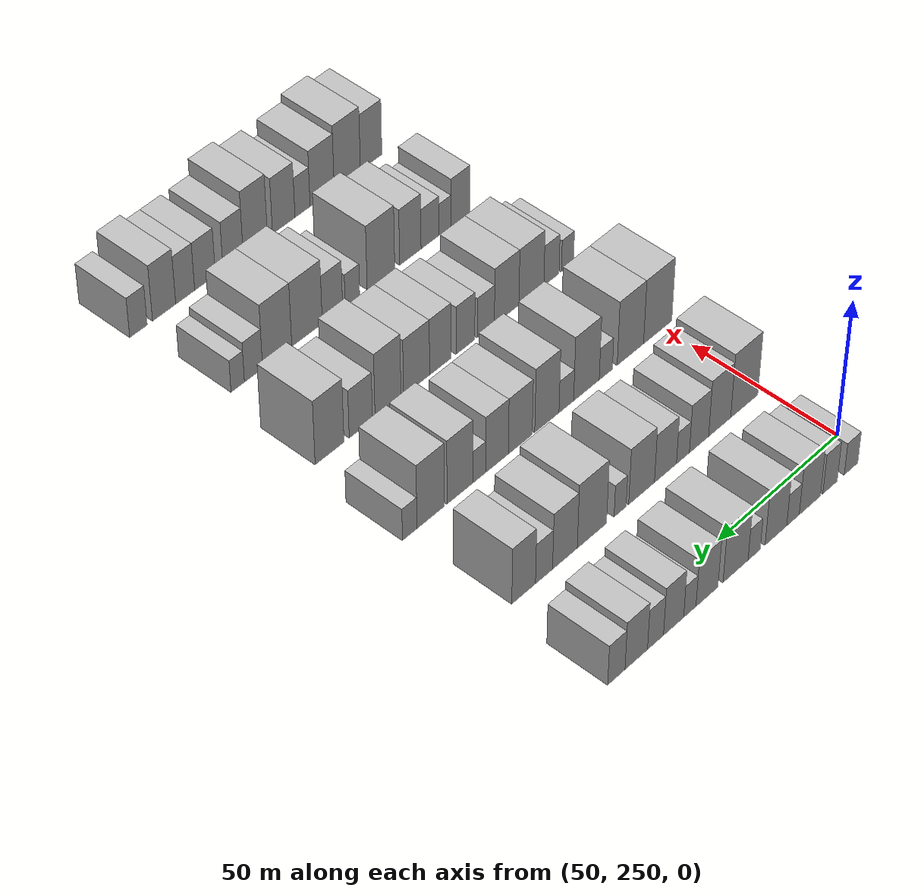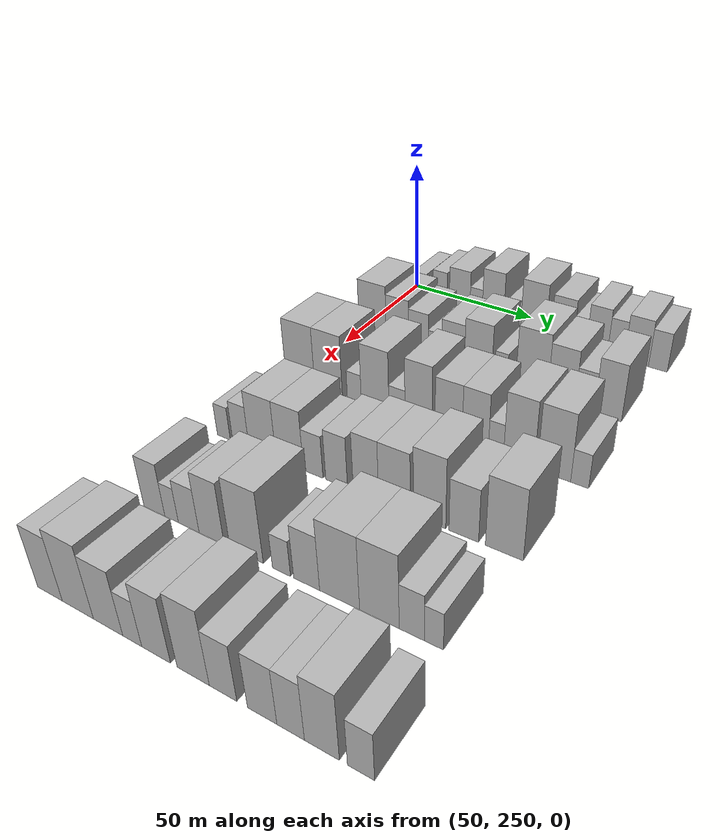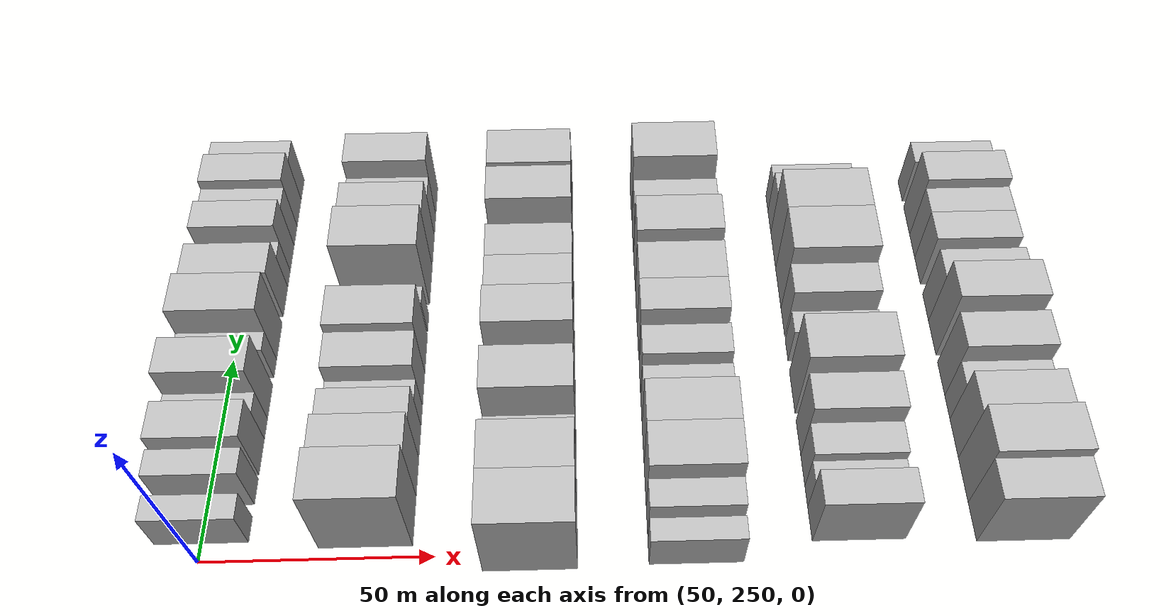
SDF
<sdf version="1.6">
 <world name="default">
  <model name="building_92">
   <static>1</static>
   <pose>50.0000 257.2683 0 0.000000 0.000000 0.000000</pose>
   <link name="link">
    <pose>0 0 6.00 0 0 0</pose>
    <collision name="collision"><geometry><box><size>20.0000 5.7715 12.0000</size></box></geometry></collision>
    <visual name="visual">
     <cast_shadows>0</cast_shadows>
     <geometry><box><size>20.0000 5.7715 12.0000</size></box></geometry>
     <material>
      <script>
       <uri>model://HANNAS_wall/materials/scripts</uri>
       <uri>model://HANNAS_wall/materials/textures</uri>
       <name>vrc/HANNAS_wall</name>
      </script>
     </material>
    </visual>
   </link>
  </model>
  <model name="building_93">
   <static>1</static>
   <pose>50.0000 266.2043 0 0.000000 0.000000 0.000000</pose>
   <link name="link">
    <pose>0 0 7.50 0 0 0</pose>
    <collision name="collision"><geometry><box><size>20.0000 6.1004 15.0000</size></box></geometry></collision>
    <visual name="visual">
     <cast_shadows>0</cast_shadows>
     <geometry><box><size>20.0000 6.1004 15.0000</size></box></geometry>
     <material>
      <script>
       <uri>model://HANNAS_wall/materials/scripts</uri>
       <uri>model://HANNAS_wall/materials/textures</uri>
       <name>vrc/HANNAS_wall</name>
      </script>
     </material>
    </visual>
   </link>
  </model>
  <model name="building_94">
   <static>1</static>
   <pose>50.0000 274.7041 0 0.000000 0.000000 0.000000</pose>
   <link name="link">
    <pose>0 0 9.00 0 0 0</pose>
    <collision name="collision"><geometry><box><size>20.0000 8.8991 18.0000</size></box></geometry></collision>
    <visual name="visual">
     <cast_shadows>0</cast_shadows>
     <geometry><box><size>20.0000 8.8991 18.0000</size></box></geometry>
     <material>
      <script>
       <uri>model://HANNAS_wall/materials/scripts</uri>
       <uri>model://HANNAS_wall/materials/textures</uri>
       <name>vrc/HANNAS_wall</name>
      </script>
     </material>
    </visual>
   </link>
  </model>
  <model name="building_95">
   <static>1</static>
   <pose>50.0000 281.7458 0 0.000000 0.000000 0.000000</pose>
   <link name="link">
    <pose>0 0 6.00 0 0 0</pose>
    <collision name="collision"><geometry><box><size>20.0000 5.1842 12.0000</size></box></geometry></collision>
    <visual name="visual">
     <cast_shadows>0</cast_shadows>
     <geometry><box><size>20.0000 5.1842 12.0000</size></box></geometry>
     <material>
      <script>
       <uri>model://HANNAS_wall/materials/scripts</uri>
       <uri>model://HANNAS_wall/materials/textures</uri>
       <name>vrc/HANNAS_wall</name>
      </script>
     </material>
    </visual>
   </link>
  </model>
  <model name="building_96">
   <static>1</static>
   <pose>50.0000 288.7859 0 0.000000 0.000000 0.000000</pose>
   <link name="link">
    <pose>0 0 10.50 0 0 0</pose>
    <collision name="collision"><geometry><box><size>20.0000 8.8962 21.0000</size></box></geometry></collision>
    <visual name="visual">
     <cast_shadows>0</cast_shadows>
     <geometry><box><size>20.0000 8.8962 21.0000</size></box></geometry>
     <material>
      <script>
       <uri>model://HANNAS_wall/materials/scripts</uri>
       <uri>model://HANNAS_wall/materials/textures</uri>
       <name>vrc/HANNAS_wall</name>
      </script>
     </material>
    </visual>
   </link>
  </model>
  <model name="building_97">
   <static>1</static>
   <pose>50.0000 297.7206 0 0.000000 0.000000 0.000000</pose>
   <link name="link">
    <pose>0 0 6.00 0 0 0</pose>
    <collision name="collision"><geometry><box><size>20.0000 4.9731 12.0000</size></box></geometry></collision>
    <visual name="visual">
     <cast_shadows>0</cast_shadows>
     <geometry><box><size>20.0000 4.9731 12.0000</size></box></geometry>
     <material>
      <script>
       <uri>model://HANNAS_wall/materials/scripts</uri>
       <uri>model://HANNAS_wall/materials/textures</uri>
       <name>vrc/HANNAS_wall</name>
      </script>
     </material>
    </visual>
   </link>
  </model>
  <model name="building_98">
   <static>1</static>
   <pose>50.0000 305.2577 0 0.000000 0.000000 0.000000</pose>
   <link name="link">
    <pose>0 0 10.50 0 0 0</pose>
    <collision name="collision"><geometry><box><size>20.0000 10.1011 21.0000</size></box></geometry></collision>
    <visual name="visual">
     <cast_shadows>0</cast_shadows>
     <geometry><box><size>20.0000 10.1011 21.0000</size></box></geometry>
     <material>
      <script>
       <uri>model://HANNAS_wall/materials/scripts</uri>
       <uri>model://HANNAS_wall/materials/textures</uri>
       <name>vrc/HANNAS_wall</name>
      </script>
     </material>
    </visual>
   </link>
  </model>
  <model name="building_99">
   <static>1</static>
   <pose>50.0000 316.6990 0 0.000000 0.000000 0.000000</pose>
   <link name="link">
    <pose>0 0 9.00 0 0 0</pose>
    <collision name="collision"><geometry><box><size>20.0000 8.7816 18.0000</size></box></geometry></collision>
    <visual name="visual">
     <cast_shadows>0</cast_shadows>
     <geometry><box><size>20.0000 8.7816 18.0000</size></box></geometry>
     <material>
      <script>
       <uri>model://HANNAS_wall/materials/scripts</uri>
       <uri>model://HANNAS_wall/materials/textures</uri>
       <name>vrc/HANNAS_wall</name>
      </script>
     </material>
    </visual>
   </link>
  </model>
  <model name="building_100">
   <static>1</static>
   <pose>50.0000 323.5228 0 0.000000 0.000000 0.000000</pose>
   <link name="link">
    <pose>0 0 6.00 0 0 0</pose>
    <collision name="collision"><geometry><box><size>20.0000 4.8660 12.0000</size></box></geometry></collision>
    <visual name="visual">
     <cast_shadows>0</cast_shadows>
     <geometry><box><size>20.0000 4.8660 12.0000</size></box></geometry>
     <material>
      <script>
       <uri>model://HANNAS_wall/materials/scripts</uri>
       <uri>model://HANNAS_wall/materials/textures</uri>
       <name>vrc/HANNAS_wall</name>
      </script>
     </material>
    </visual>
   </link>
  </model>
  <model name="building_101">
   <static>1</static>
   <pose>50.0000 329.9068 0 0.000000 0.000000 0.000000</pose>
   <link name="link">
    <pose>0 0 9.00 0 0 0</pose>
    <collision name="collision"><geometry><box><size>20.0000 7.9020 18.0000</size></box></geometry></collision>
    <visual name="visual">
     <cast_shadows>0</cast_shadows>
     <geometry><box><size>20.0000 7.9020 18.0000</size></box></geometry>
     <material>
      <script>
       <uri>model://HANNAS_wall/materials/scripts</uri>
       <uri>model://HANNAS_wall/materials/textures</uri>
       <name>vrc/HANNAS_wall</name>
      </script>
     </material>
    </visual>
   </link>
  </model>
  <model name="building_102">
   <static>1</static>
   <pose>50.0000 336.9738 0 0.000000 0.000000 0.000000</pose>
   <link name="link">
    <pose>0 0 7.50 0 0 0</pose>
    <collision name="collision"><geometry><box><size>20.0000 6.2320 15.0000</size></box></geometry></collision>
    <visual name="visual">
     <cast_shadows>0</cast_shadows>
     <geometry><box><size>20.0000 6.2320 15.0000</size></box></geometry>
     <material>
      <script>
       <uri>model://HANNAS_wall/materials/scripts</uri>
       <uri>model://HANNAS_wall/materials/textures</uri>
       <name>vrc/HANNAS_wall</name>
      </script>
     </material>
    </visual>
   </link>
  </model>
  <model name="building_103">
   <static>1</static>
   <pose>50.0000 344.4204 0 0.000000 0.000000 0.000000</pose>
   <link name="link">
    <pose>0 0 9.00 0 0 0</pose>
    <collision name="collision"><geometry><box><size>20.0000 8.6612 18.0000</size></box></geometry></collision>
    <visual name="visual">
     <cast_shadows>0</cast_shadows>
     <geometry><box><size>20.0000 8.6612 18.0000</size></box></geometry>
     <material>
      <script>
       <uri>model://HANNAS_wall/materials/scripts</uri>
       <uri>model://HANNAS_wall/materials/textures</uri>
       <name>vrc/HANNAS_wall</name>
      </script>
     </material>
    </visual>
   </link>
  </model>
  <model name="building_104">
   <static>1</static>
   <pose>50.0000 352.0618 0 0.000000 0.000000 0.000000</pose>
   <link name="link">
    <pose>0 0 7.50 0 0 0</pose>
    <collision name="collision"><geometry><box><size>20.0000 6.6216 15.0000</size></box></geometry></collision>
    <visual name="visual">
     <cast_shadows>0</cast_shadows>
     <geometry><box><size>20.0000 6.6216 15.0000</size></box></geometry>
     <material>
      <script>
       <uri>model://HANNAS_wall/materials/scripts</uri>
       <uri>model://HANNAS_wall/materials/textures</uri>
       <name>vrc/HANNAS_wall</name>
      </script>
     </material>
    </visual>
   </link>
  </model>
  <model name="building_219">
   <static>1</static>
   <pose>85.0000 258.3896 0 0.000000 0.000000 0.000000</pose>
   <link name="link">
    <pose>0 0 12.00 0 0 0</pose>
    <collision name="collision"><geometry><box><size>20.0000 11.4943 24.0000</size></box></geometry></collision>
    <visual name="visual">
     <cast_shadows>0</cast_shadows>
     <geometry><box><size>20.0000 11.4943 24.0000</size></box></geometry>
     <material>
      <script>
       <uri>model://HANNAS_wall/materials/scripts</uri>
       <uri>model://HANNAS_wall/materials/textures</uri>
       <name>vrc/HANNAS_wall</name>
      </script>
     </material>
    </visual>
   </link>
  </model>
  <model name="building_220">
   <static>1</static>
   <pose>85.0000 268.7590 0 0.000000 0.000000 0.000000</pose>
   <link name="link">
    <pose>0 0 10.50 0 0 0</pose>
    <collision name="collision"><geometry><box><size>20.0000 9.2443 21.0000</size></box></geometry></collision>
    <visual name="visual">
     <cast_shadows>0</cast_shadows>
     <geometry><box><size>20.0000 9.2443 21.0000</size></box></geometry>
     <material>
      <script>
       <uri>model://HANNAS_wall/materials/scripts</uri>
       <uri>model://HANNAS_wall/materials/textures</uri>
       <name>vrc/HANNAS_wall</name>
      </script>
     </material>
    </visual>
   </link>
  </model>
  <model name="building_221">
   <static>1</static>
   <pose>85.0000 277.3697 0 0.000000 0.000000 0.000000</pose>
   <link name="link">
    <pose>0 0 9.00 0 0 0</pose>
    <collision name="collision"><geometry><box><size>20.0000 7.9772 18.0000</size></box></geometry></collision>
    <visual name="visual">
     <cast_shadows>0</cast_shadows>
     <geometry><box><size>20.0000 7.9772 18.0000</size></box></geometry>
     <material>
      <script>
       <uri>model://HANNAS_wall/materials/scripts</uri>
       <uri>model://HANNAS_wall/materials/textures</uri>
       <name>vrc/HANNAS_wall</name>
      </script>
     </material>
    </visual>
   </link>
  </model>
  <model name="building_222">
   <static>1</static>
   <pose>85.0000 284.0123 0 0.000000 0.000000 0.000000</pose>
   <link name="link">
    <pose>0 0 6.00 0 0 0</pose>
    <collision name="collision"><geometry><box><size>20.0000 5.3081 12.0000</size></box></geometry></collision>
    <visual name="visual">
     <cast_shadows>0</cast_shadows>
     <geometry><box><size>20.0000 5.3081 12.0000</size></box></geometry>
     <material>
      <script>
       <uri>model://HANNAS_wall/materials/scripts</uri>
       <uri>model://HANNAS_wall/materials/textures</uri>
       <name>vrc/HANNAS_wall</name>
      </script>
     </material>
    </visual>
   </link>
  </model>
  <model name="building_223">
   <static>1</static>
   <pose>85.0000 291.1595 0 0.000000 0.000000 0.000000</pose>
   <link name="link">
    <pose>0 0 9.00 0 0 0</pose>
    <collision name="collision"><geometry><box><size>20.0000 8.9863 18.0000</size></box></geometry></collision>
    <visual name="visual">
     <cast_shadows>0</cast_shadows>
     <geometry><box><size>20.0000 8.9863 18.0000</size></box></geometry>
     <material>
      <script>
       <uri>model://HANNAS_wall/materials/scripts</uri>
       <uri>model://HANNAS_wall/materials/textures</uri>
       <name>vrc/HANNAS_wall</name>
      </script>
     </material>
    </visual>
   </link>
  </model>
  <model name="building_224">
   <static>1</static>
   <pose>85.0000 300.8578 0 0.000000 0.000000 0.000000</pose>
   <link name="link">
    <pose>0 0 10.50 0 0 0</pose>
    <collision name="collision"><geometry><box><size>20.0000 10.4103 21.0000</size></box></geometry></collision>
    <visual name="visual">
     <cast_shadows>0</cast_shadows>
     <geometry><box><size>20.0000 10.4103 21.0000</size></box></geometry>
     <material>
      <script>
       <uri>model://HANNAS_wall/materials/scripts</uri>
       <uri>model://HANNAS_wall/materials/textures</uri>
       <name>vrc/HANNAS_wall</name>
      </script>
     </material>
    </visual>
   </link>
  </model>
  <model name="building_225">
   <static>1</static>
   <pose>85.0000 309.4707 0 0.000000 0.000000 0.000000</pose>
   <link name="link">
    <pose>0 0 6.00 0 0 0</pose>
    <collision name="collision"><geometry><box><size>20.0000 4.8156 12.0000</size></box></geometry></collision>
    <visual name="visual">
     <cast_shadows>0</cast_shadows>
     <geometry><box><size>20.0000 4.8156 12.0000</size></box></geometry>
     <material>
      <script>
       <uri>model://HANNAS_wall/materials/scripts</uri>
       <uri>model://HANNAS_wall/materials/textures</uri>
       <name>vrc/HANNAS_wall</name>
      </script>
     </material>
    </visual>
   </link>
  </model>
  <model name="building_226">
   <static>1</static>
   <pose>85.0000 320.6499 0 0.000000 0.000000 0.000000</pose>
   <link name="link">
    <pose>0 0 12.00 0 0 0</pose>
    <collision name="collision"><geometry><box><size>20.0000 11.5427 24.0000</size></box></geometry></collision>
    <visual name="visual">
     <cast_shadows>0</cast_shadows>
     <geometry><box><size>20.0000 11.5427 24.0000</size></box></geometry>
     <material>
      <script>
       <uri>model://HANNAS_wall/materials/scripts</uri>
       <uri>model://HANNAS_wall/materials/textures</uri>
       <name>vrc/HANNAS_wall</name>
      </script>
     </material>
    </visual>
   </link>
  </model>
  <model name="building_227">
   <static>1</static>
   <pose>85.0000 331.2374 0 0.000000 0.000000 0.000000</pose>
   <link name="link">
    <pose>0 0 10.50 0 0 0</pose>
    <collision name="collision"><geometry><box><size>20.0000 9.6322 21.0000</size></box></geometry></collision>
    <visual name="visual">
     <cast_shadows>0</cast_shadows>
     <geometry><box><size>20.0000 9.6322 21.0000</size></box></geometry>
     <material>
      <script>
       <uri>model://HANNAS_wall/materials/scripts</uri>
       <uri>model://HANNAS_wall/materials/textures</uri>
       <name>vrc/HANNAS_wall</name>
      </script>
     </material>
    </visual>
   </link>
  </model>
  <model name="building_228">
   <static>1</static>
   <pose>85.0000 339.3520 0 0.000000 0.000000 0.000000</pose>
   <link name="link">
    <pose>0 0 7.50 0 0 0</pose>
    <collision name="collision"><geometry><box><size>20.0000 6.5972 15.0000</size></box></geometry></collision>
    <visual name="visual">
     <cast_shadows>0</cast_shadows>
     <geometry><box><size>20.0000 6.5972 15.0000</size></box></geometry>
     <material>
      <script>
       <uri>model://HANNAS_wall/materials/scripts</uri>
       <uri>model://HANNAS_wall/materials/textures</uri>
       <name>vrc/HANNAS_wall</name>
      </script>
     </material>
    </visual>
   </link>
  </model>
  <model name="building_229">
   <static>1</static>
   <pose>85.0000 347.1749 0 0.000000 0.000000 0.000000</pose>
   <link name="link">
    <pose>0 0 10.50 0 0 0</pose>
    <collision name="collision"><geometry><box><size>20.0000 9.0485 21.0000</size></box></geometry></collision>
    <visual name="visual">
     <cast_shadows>0</cast_shadows>
     <geometry><box><size>20.0000 9.0485 21.0000</size></box></geometry>
     <material>
      <script>
       <uri>model://HANNAS_wall/materials/scripts</uri>
       <uri>model://HANNAS_wall/materials/textures</uri>
       <name>vrc/HANNAS_wall</name>
      </script>
     </material>
    </visual>
   </link>
  </model>
  <model name="building_352">
   <static>1</static>
   <pose>120.0000 252.5207 0 0.000000 0.000000 0.000000</pose>
   <link name="link">
    <pose>0 0 12.00 0 0 0</pose>
    <collision name="collision"><geometry><box><size>20.0000 11.9586 24.0000</size></box></geometry></collision>
    <visual name="visual">
     <cast_shadows>0</cast_shadows>
     <geometry><box><size>20.0000 11.9586 24.0000</size></box></geometry>
     <material>
      <script>
       <uri>model://HANNAS_wall/materials/scripts</uri>
       <uri>model://HANNAS_wall/materials/textures</uri>
       <name>vrc/HANNAS_wall</name>
      </script>
     </material>
    </visual>
   </link>
  </model>
  <model name="building_353">
   <static>1</static>
   <pose>120.0000 264.0244 0 0.000000 0.000000 0.000000</pose>
   <link name="link">
    <pose>0 0 12.00 0 0 0</pose>
    <collision name="collision"><geometry><box><size>20.0000 11.0487 24.0000</size></box></geometry></collision>
    <visual name="visual">
     <cast_shadows>0</cast_shadows>
     <geometry><box><size>20.0000 11.0487 24.0000</size></box></geometry>
     <material>
      <script>
       <uri>model://HANNAS_wall/materials/scripts</uri>
       <uri>model://HANNAS_wall/materials/textures</uri>
       <name>vrc/HANNAS_wall</name>
      </script>
     </material>
    </visual>
   </link>
  </model>
  <model name="building_354">
   <static>1</static>
   <pose>120.0000 274.2743 0 0.000000 0.000000 0.000000</pose>
   <link name="link">
    <pose>0 0 6.00 0 0 0</pose>
    <collision name="collision"><geometry><box><size>20.0000 5.4513 12.0000</size></box></geometry></collision>
    <visual name="visual">
     <cast_shadows>0</cast_shadows>
     <geometry><box><size>20.0000 5.4513 12.0000</size></box></geometry>
     <material>
      <script>
       <uri>model://HANNAS_wall/materials/scripts</uri>
       <uri>model://HANNAS_wall/materials/textures</uri>
       <name>vrc/HANNAS_wall</name>
      </script>
     </material>
    </visual>
   </link>
  </model>
  <model name="building_355">
   <static>1</static>
   <pose>120.0000 282.2434 0 0.000000 0.000000 0.000000</pose>
   <link name="link">
    <pose>0 0 12.00 0 0 0</pose>
    <collision name="collision"><geometry><box><size>20.0000 10.4867 24.0000</size></box></geometry></collision>
    <visual name="visual">
     <cast_shadows>0</cast_shadows>
     <geometry><box><size>20.0000 10.4867 24.0000</size></box></geometry>
     <material>
      <script>
       <uri>model://HANNAS_wall/materials/scripts</uri>
       <uri>model://HANNAS_wall/materials/textures</uri>
       <name>vrc/HANNAS_wall</name>
      </script>
     </material>
    </visual>
   </link>
  </model>
  <model name="building_356">
   <static>1</static>
   <pose>120.0000 290.4599 0 0.000000 0.000000 0.000000</pose>
   <link name="link">
    <pose>0 0 6.00 0 0 0</pose>
    <collision name="collision"><geometry><box><size>20.0000 5.9464 12.0000</size></box></geometry></collision>
    <visual name="visual">
     <cast_shadows>0</cast_shadows>
     <geometry><box><size>20.0000 5.9464 12.0000</size></box></geometry>
     <material>
      <script>
       <uri>model://HANNAS_wall/materials/scripts</uri>
       <uri>model://HANNAS_wall/materials/textures</uri>
       <name>vrc/HANNAS_wall</name>
      </script>
     </material>
    </visual>
   </link>
  </model>
  <model name="building_357">
   <static>1</static>
   <pose>120.0000 298.3262 0 0.000000 0.000000 0.000000</pose>
   <link name="link">
    <pose>0 0 12.00 0 0 0</pose>
    <collision name="collision"><geometry><box><size>20.0000 9.7862 24.0000</size></box></geometry></collision>
    <visual name="visual">
     <cast_shadows>0</cast_shadows>
     <geometry><box><size>20.0000 9.7862 24.0000</size></box></geometry>
     <material>
      <script>
       <uri>model://HANNAS_wall/materials/scripts</uri>
       <uri>model://HANNAS_wall/materials/textures</uri>
       <name>vrc/HANNAS_wall</name>
      </script>
     </material>
    </visual>
   </link>
  </model>
  <model name="building_358">
   <static>1</static>
   <pose>120.0000 308.9701 0 0.000000 0.000000 0.000000</pose>
   <link name="link">
    <pose>0 0 10.50 0 0 0</pose>
    <collision name="collision"><geometry><box><size>20.0000 9.5015 21.0000</size></box></geometry></collision>
    <visual name="visual">
     <cast_shadows>0</cast_shadows>
     <geometry><box><size>20.0000 9.5015 21.0000</size></box></geometry>
     <material>
      <script>
       <uri>model://HANNAS_wall/materials/scripts</uri>
       <uri>model://HANNAS_wall/materials/textures</uri>
       <name>vrc/HANNAS_wall</name>
      </script>
     </material>
    </visual>
   </link>
  </model>
  <model name="building_359">
   <static>1</static>
   <pose>120.0000 318.1896 0 0.000000 0.000000 0.000000</pose>
   <link name="link">
    <pose>0 0 10.50 0 0 0</pose>
    <collision name="collision"><geometry><box><size>20.0000 8.9374 21.0000</size></box></geometry></collision>
    <visual name="visual">
     <cast_shadows>0</cast_shadows>
     <geometry><box><size>20.0000 8.9374 21.0000</size></box></geometry>
     <material>
      <script>
       <uri>model://HANNAS_wall/materials/scripts</uri>
       <uri>model://HANNAS_wall/materials/textures</uri>
       <name>vrc/HANNAS_wall</name>
      </script>
     </material>
    </visual>
   </link>
  </model>
  <model name="building_360">
   <static>1</static>
   <pose>120.0000 325.1871 0 0.000000 0.000000 0.000000</pose>
   <link name="link">
    <pose>0 0 6.00 0 0 0</pose>
    <collision name="collision"><geometry><box><size>20.0000 5.0576 12.0000</size></box></geometry></collision>
    <visual name="visual">
     <cast_shadows>0</cast_shadows>
     <geometry><box><size>20.0000 5.0576 12.0000</size></box></geometry>
     <material>
      <script>
       <uri>model://HANNAS_wall/materials/scripts</uri>
       <uri>model://HANNAS_wall/materials/textures</uri>
       <name>vrc/HANNAS_wall</name>
      </script>
     </material>
    </visual>
   </link>
  </model>
  <model name="building_361">
   <static>1</static>
   <pose>120.0000 332.6868 0 0.000000 0.000000 0.000000</pose>
   <link name="link">
    <pose>0 0 12.00 0 0 0</pose>
    <collision name="collision"><geometry><box><size>20.0000 9.9419 24.0000</size></box></geometry></collision>
    <visual name="visual">
     <cast_shadows>0</cast_shadows>
     <geometry><box><size>20.0000 9.9419 24.0000</size></box></geometry>
     <material>
      <script>
       <uri>model://HANNAS_wall/materials/scripts</uri>
       <uri>model://HANNAS_wall/materials/textures</uri>
       <name>vrc/HANNAS_wall</name>
      </script>
     </material>
    </visual>
   </link>
  </model>
  <model name="building_362">
   <static>1</static>
   <pose>120.0000 343.8980 0 0.000000 0.000000 0.000000</pose>
   <link name="link">
    <pose>0 0 12.00 0 0 0</pose>
    <collision name="collision"><geometry><box><size>20.0000 10.4806 24.0000</size></box></geometry></collision>
    <visual name="visual">
     <cast_shadows>0</cast_shadows>
     <geometry><box><size>20.0000 10.4806 24.0000</size></box></geometry>
     <material>
      <script>
       <uri>model://HANNAS_wall/materials/scripts</uri>
       <uri>model://HANNAS_wall/materials/textures</uri>
       <name>vrc/HANNAS_wall</name>
      </script>
     </material>
    </visual>
   </link>
  </model>
  <model name="building_363">
   <static>1</static>
   <pose>120.0000 351.8908 0 0.000000 0.000000 0.000000</pose>
   <link name="link">
    <pose>0 0 6.00 0 0 0</pose>
    <collision name="collision"><geometry><box><size>20.0000 5.5050 12.0000</size></box></geometry></collision>
    <visual name="visual">
     <cast_shadows>0</cast_shadows>
     <geometry><box><size>20.0000 5.5050 12.0000</size></box></geometry>
     <material>
      <script>
       <uri>model://HANNAS_wall/materials/scripts</uri>
       <uri>model://HANNAS_wall/materials/textures</uri>
       <name>vrc/HANNAS_wall</name>
      </script>
     </material>
    </visual>
   </link>
  </model>
  <model name="building_484">
   <static>1</static>
   <pose>155.0000 249.7170 0 0.000000 0.000000 0.000000</pose>
   <link name="link">
    <pose>0 0 6.00 0 0 0</pose>
    <collision name="collision"><geometry><box><size>20.0000 5.1620 12.0000</size></box></geometry></collision>
    <visual name="visual">
     <cast_shadows>0</cast_shadows>
     <geometry><box><size>20.0000 5.1620 12.0000</size></box></geometry>
     <material>
      <script>
       <uri>model://HANNAS_wall/materials/scripts</uri>
       <uri>model://HANNAS_wall/materials/textures</uri>
       <name>vrc/HANNAS_wall</name>
      </script>
     </material>
    </visual>
   </link>
  </model>
  <model name="building_485">
   <static>1</static>
   <pose>155.0000 256.4780 0 0.000000 0.000000 0.000000</pose>
   <link name="link">
    <pose>0 0 7.50 0 0 0</pose>
    <collision name="collision"><geometry><box><size>20.0000 6.3600 15.0000</size></box></geometry></collision>
    <visual name="visual">
     <cast_shadows>0</cast_shadows>
     <geometry><box><size>20.0000 6.3600 15.0000</size></box></geometry>
     <material>
      <script>
       <uri>model://HANNAS_wall/materials/scripts</uri>
       <uri>model://HANNAS_wall/materials/textures</uri>
       <name>vrc/HANNAS_wall</name>
      </script>
     </material>
    </visual>
   </link>
  </model>
  <model name="building_486">
   <static>1</static>
   <pose>155.0000 264.8373 0 0.000000 0.000000 0.000000</pose>
   <link name="link">
    <pose>0 0 10.50 0 0 0</pose>
    <collision name="collision"><geometry><box><size>20.0000 10.3586 21.0000</size></box></geometry></collision>
    <visual name="visual">
     <cast_shadows>0</cast_shadows>
     <geometry><box><size>20.0000 10.3586 21.0000</size></box></geometry>
     <material>
      <script>
       <uri>model://HANNAS_wall/materials/scripts</uri>
       <uri>model://HANNAS_wall/materials/textures</uri>
       <name>vrc/HANNAS_wall</name>
      </script>
     </material>
    </visual>
   </link>
  </model>
  <model name="building_487">
   <static>1</static>
   <pose>155.0000 275.0797 0 0.000000 0.000000 0.000000</pose>
   <link name="link">
    <pose>0 0 10.50 0 0 0</pose>
    <collision name="collision"><geometry><box><size>20.0000 10.1262 21.0000</size></box></geometry></collision>
    <visual name="visual">
     <cast_shadows>0</cast_shadows>
     <geometry><box><size>20.0000 10.1262 21.0000</size></box></geometry>
     <material>
      <script>
       <uri>model://HANNAS_wall/materials/scripts</uri>
       <uri>model://HANNAS_wall/materials/textures</uri>
       <name>vrc/HANNAS_wall</name>
      </script>
     </material>
    </visual>
   </link>
  </model>
  <model name="building_488">
   <static>1</static>
   <pose>155.0000 283.6357 0 0.000000 0.000000 0.000000</pose>
   <link name="link">
    <pose>0 0 7.50 0 0 0</pose>
    <collision name="collision"><geometry><box><size>20.0000 6.9858 15.0000</size></box></geometry></collision>
    <visual name="visual">
     <cast_shadows>0</cast_shadows>
     <geometry><box><size>20.0000 6.9858 15.0000</size></box></geometry>
     <material>
      <script>
       <uri>model://HANNAS_wall/materials/scripts</uri>
       <uri>model://HANNAS_wall/materials/textures</uri>
       <name>vrc/HANNAS_wall</name>
      </script>
     </material>
    </visual>
   </link>
  </model>
  <model name="building_489">
   <static>1</static>
   <pose>155.0000 291.9271 0 0.000000 0.000000 0.000000</pose>
   <link name="link">
    <pose>0 0 9.00 0 0 0</pose>
    <collision name="collision"><geometry><box><size>20.0000 7.5970 18.0000</size></box></geometry></collision>
    <visual name="visual">
     <cast_shadows>0</cast_shadows>
     <geometry><box><size>20.0000 7.5970 18.0000</size></box></geometry>
     <material>
      <script>
       <uri>model://HANNAS_wall/materials/scripts</uri>
       <uri>model://HANNAS_wall/materials/textures</uri>
       <name>vrc/HANNAS_wall</name>
      </script>
     </material>
    </visual>
   </link>
  </model>
  <model name="building_490">
   <static>1</static>
   <pose>155.0000 301.9891 0 0.000000 0.000000 0.000000</pose>
   <link name="link">
    <pose>0 0 10.50 0 0 0</pose>
    <collision name="collision"><geometry><box><size>20.0000 8.5270 21.0000</size></box></geometry></collision>
    <visual name="visual">
     <cast_shadows>0</cast_shadows>
     <geometry><box><size>20.0000 8.5270 21.0000</size></box></geometry>
     <material>
      <script>
       <uri>model://HANNAS_wall/materials/scripts</uri>
       <uri>model://HANNAS_wall/materials/textures</uri>
       <name>vrc/HANNAS_wall</name>
      </script>
     </material>
    </visual>
   </link>
  </model>
  <model name="building_491">
   <static>1</static>
   <pose>155.0000 311.4113 0 0.000000 0.000000 0.000000</pose>
   <link name="link">
    <pose>0 0 10.50 0 0 0</pose>
    <collision name="collision"><geometry><box><size>20.0000 10.3175 21.0000</size></box></geometry></collision>
    <visual name="visual">
     <cast_shadows>0</cast_shadows>
     <geometry><box><size>20.0000 10.3175 21.0000</size></box></geometry>
     <material>
      <script>
       <uri>model://HANNAS_wall/materials/scripts</uri>
       <uri>model://HANNAS_wall/materials/textures</uri>
       <name>vrc/HANNAS_wall</name>
      </script>
     </material>
    </visual>
   </link>
  </model>
  <model name="building_492">
   <static>1</static>
   <pose>155.0000 322.6280 0 0.000000 0.000000 0.000000</pose>
   <link name="link">
    <pose>0 0 12.00 0 0 0</pose>
    <collision name="collision"><geometry><box><size>20.0000 10.1158 24.0000</size></box></geometry></collision>
    <visual name="visual">
     <cast_shadows>0</cast_shadows>
     <geometry><box><size>20.0000 10.1158 24.0000</size></box></geometry>
     <material>
      <script>
       <uri>model://HANNAS_wall/materials/scripts</uri>
       <uri>model://HANNAS_wall/materials/textures</uri>
       <name>vrc/HANNAS_wall</name>
      </script>
     </material>
    </visual>
   </link>
  </model>
  <model name="building_493">
   <static>1</static>
   <pose>155.0000 333.1666 0 0.000000 0.000000 0.000000</pose>
   <link name="link">
    <pose>0 0 9.00 0 0 0</pose>
    <collision name="collision"><geometry><box><size>20.0000 8.9615 18.0000</size></box></geometry></collision>
    <visual name="visual">
     <cast_shadows>0</cast_shadows>
     <geometry><box><size>20.0000 8.9615 18.0000</size></box></geometry>
     <material>
      <script>
       <uri>model://HANNAS_wall/materials/scripts</uri>
       <uri>model://HANNAS_wall/materials/textures</uri>
       <name>vrc/HANNAS_wall</name>
      </script>
     </material>
    </visual>
   </link>
  </model>
  <model name="building_494">
   <static>1</static>
   <pose>155.0000 345.1409 0 0.000000 0.000000 0.000000</pose>
   <link name="link">
    <pose>0 0 12.00 0 0 0</pose>
    <collision name="collision"><geometry><box><size>20.0000 10.9870 24.0000</size></box></geometry></collision>
    <visual name="visual">
     <cast_shadows>0</cast_shadows>
     <geometry><box><size>20.0000 10.9870 24.0000</size></box></geometry>
     <material>
      <script>
       <uri>model://HANNAS_wall/materials/scripts</uri>
       <uri>model://HANNAS_wall/materials/textures</uri>
       <name>vrc/HANNAS_wall</name>
      </script>
     </material>
    </visual>
   </link>
  </model>
  <model name="building_599">
   <static>1</static>
   <pose>190.0000 255.3700 0 0.000000 0.000000 0.000000</pose>
   <link name="link">
    <pose>0 0 9.00 0 0 0</pose>
    <collision name="collision"><geometry><box><size>20.0000 7.8620 18.0000</size></box></geometry></collision>
    <visual name="visual">
     <cast_shadows>0</cast_shadows>
     <geometry><box><size>20.0000 7.8620 18.0000</size></box></geometry>
     <material>
      <script>
       <uri>model://HANNAS_wall/materials/scripts</uri>
       <uri>model://HANNAS_wall/materials/textures</uri>
       <name>vrc/HANNAS_wall</name>
      </script>
     </material>
    </visual>
   </link>
  </model>
  <model name="building_600">
   <static>1</static>
   <pose>190.0000 261.7975 0 0.000000 0.000000 0.000000</pose>
   <link name="link">
    <pose>0 0 6.00 0 0 0</pose>
    <collision name="collision"><geometry><box><size>20.0000 4.9929 12.0000</size></box></geometry></collision>
    <visual name="visual">
     <cast_shadows>0</cast_shadows>
     <geometry><box><size>20.0000 4.9929 12.0000</size></box></geometry>
     <material>
      <script>
       <uri>model://HANNAS_wall/materials/scripts</uri>
       <uri>model://HANNAS_wall/materials/textures</uri>
       <name>vrc/HANNAS_wall</name>
      </script>
     </material>
    </visual>
   </link>
  </model>
  <model name="building_601">
   <static>1</static>
   <pose>190.0000 268.0228 0 0.000000 0.000000 0.000000</pose>
   <link name="link">
    <pose>0 0 7.50 0 0 0</pose>
    <collision name="collision"><geometry><box><size>20.0000 7.4577 15.0000</size></box></geometry></collision>
    <visual name="visual">
     <cast_shadows>0</cast_shadows>
     <geometry><box><size>20.0000 7.4577 15.0000</size></box></geometry>
     <material>
      <script>
       <uri>model://HANNAS_wall/materials/scripts</uri>
       <uri>model://HANNAS_wall/materials/textures</uri>
       <name>vrc/HANNAS_wall</name>
      </script>
     </material>
    </visual>
   </link>
  </model>
  <model name="building_602">
   <static>1</static>
   <pose>190.0000 276.1352 0 0.000000 0.000000 0.000000</pose>
   <link name="link">
    <pose>0 0 10.50 0 0 0</pose>
    <collision name="collision"><geometry><box><size>20.0000 8.7671 21.0000</size></box></geometry></collision>
    <visual name="visual">
     <cast_shadows>0</cast_shadows>
     <geometry><box><size>20.0000 8.7671 21.0000</size></box></geometry>
     <material>
      <script>
       <uri>model://HANNAS_wall/materials/scripts</uri>
       <uri>model://HANNAS_wall/materials/textures</uri>
       <name>vrc/HANNAS_wall</name>
      </script>
     </material>
    </visual>
   </link>
  </model>
  <model name="building_603">
   <static>1</static>
   <pose>190.0000 288.0915 0 0.000000 0.000000 0.000000</pose>
   <link name="link">
    <pose>0 0 12.00 0 0 0</pose>
    <collision name="collision"><geometry><box><size>20.0000 11.1453 24.0000</size></box></geometry></collision>
    <visual name="visual">
     <cast_shadows>0</cast_shadows>
     <geometry><box><size>20.0000 11.1453 24.0000</size></box></geometry>
     <material>
      <script>
       <uri>model://HANNAS_wall/materials/scripts</uri>
       <uri>model://HANNAS_wall/materials/textures</uri>
       <name>vrc/HANNAS_wall</name>
      </script>
     </material>
    </visual>
   </link>
  </model>
  <model name="building_604">
   <static>1</static>
   <pose>190.0000 299.5558 0 0.000000 0.000000 0.000000</pose>
   <link name="link">
    <pose>0 0 6.00 0 0 0</pose>
    <collision name="collision"><geometry><box><size>20.0000 5.7834 12.0000</size></box></geometry></collision>
    <visual name="visual">
     <cast_shadows>0</cast_shadows>
     <geometry><box><size>20.0000 5.7834 12.0000</size></box></geometry>
     <material>
      <script>
       <uri>model://HANNAS_wall/materials/scripts</uri>
       <uri>model://HANNAS_wall/materials/textures</uri>
       <name>vrc/HANNAS_wall</name>
      </script>
     </material>
    </visual>
   </link>
  </model>
  <model name="building_605">
   <static>1</static>
   <pose>190.0000 307.4768 0 0.000000 0.000000 0.000000</pose>
   <link name="link">
    <pose>0 0 9.00 0 0 0</pose>
    <collision name="collision"><geometry><box><size>20.0000 8.0585 18.0000</size></box></geometry></collision>
    <visual name="visual">
     <cast_shadows>0</cast_shadows>
     <geometry><box><size>20.0000 8.0585 18.0000</size></box></geometry>
     <material>
      <script>
       <uri>model://HANNAS_wall/materials/scripts</uri>
       <uri>model://HANNAS_wall/materials/textures</uri>
       <name>vrc/HANNAS_wall</name>
      </script>
     </material>
    </visual>
   </link>
  </model>
  <model name="building_606">
   <static>1</static>
   <pose>190.0000 317.4761 0 0.000000 0.000000 0.000000</pose>
   <link name="link">
    <pose>0 0 12.00 0 0 0</pose>
    <collision name="collision"><geometry><box><size>20.0000 11.9401 24.0000</size></box></geometry></collision>
    <visual name="visual">
     <cast_shadows>0</cast_shadows>
     <geometry><box><size>20.0000 11.9401 24.0000</size></box></geometry>
     <material>
      <script>
       <uri>model://HANNAS_wall/materials/scripts</uri>
       <uri>model://HANNAS_wall/materials/textures</uri>
       <name>vrc/HANNAS_wall</name>
      </script>
     </material>
    </visual>
   </link>
  </model>
  <model name="building_607">
   <static>1</static>
   <pose>190.0000 329.0881 0 0.000000 0.000000 0.000000</pose>
   <link name="link">
    <pose>0 0 12.00 0 0 0</pose>
    <collision name="collision"><geometry><box><size>20.0000 11.2839 24.0000</size></box></geometry></collision>
    <visual name="visual">
     <cast_shadows>0</cast_shadows>
     <geometry><box><size>20.0000 11.2839 24.0000</size></box></geometry>
     <material>
      <script>
       <uri>model://HANNAS_wall/materials/scripts</uri>
       <uri>model://HANNAS_wall/materials/textures</uri>
       <name>vrc/HANNAS_wall</name>
      </script>
     </material>
    </visual>
   </link>
  </model>
  <model name="building_608">
   <static>1</static>
   <pose>190.0000 338.2005 0 0.000000 0.000000 0.000000</pose>
   <link name="link">
    <pose>0 0 7.50 0 0 0</pose>
    <collision name="collision"><geometry><box><size>20.0000 6.9411 15.0000</size></box></geometry></collision>
    <visual name="visual">
     <cast_shadows>0</cast_shadows>
     <geometry><box><size>20.0000 6.9411 15.0000</size></box></geometry>
     <material>
      <script>
       <uri>model://HANNAS_wall/materials/scripts</uri>
       <uri>model://HANNAS_wall/materials/textures</uri>
       <name>vrc/HANNAS_wall</name>
      </script>
     </material>
    </visual>
   </link>
  </model>
  <model name="building_609">
   <static>1</static>
   <pose>190.0000 344.2189 0 0.000000 0.000000 0.000000</pose>
   <link name="link">
    <pose>0 0 6.00 0 0 0</pose>
    <collision name="collision"><geometry><box><size>20.0000 5.0956 12.0000</size></box></geometry></collision>
    <visual name="visual">
     <cast_shadows>0</cast_shadows>
     <geometry><box><size>20.0000 5.0956 12.0000</size></box></geometry>
     <material>
      <script>
       <uri>model://HANNAS_wall/materials/scripts</uri>
       <uri>model://HANNAS_wall/materials/textures</uri>
       <name>vrc/HANNAS_wall</name>
      </script>
     </material>
    </visual>
   </link>
  </model>
  <model name="building_724">
   <static>1</static>
   <pose>225.0000 254.8997 0 0.000000 0.000000 0.000000</pose>
   <link name="link">
    <pose>0 0 10.50 0 0 0</pose>
    <collision name="collision"><geometry><box><size>20.0000 8.9715 21.0000</size></box></geometry></collision>
    <visual name="visual">
     <cast_shadows>0</cast_shadows>
     <geometry><box><size>20.0000 8.9715 21.0000</size></box></geometry>
     <material>
      <script>
       <uri>model://HANNAS_wall/materials/scripts</uri>
       <uri>model://HANNAS_wall/materials/textures</uri>
       <name>vrc/HANNAS_wall</name>
      </script>
     </material>
    </visual>
   </link>
  </model>
  <model name="building_725">
   <static>1</static>
   <pose>225.0000 264.8023 0 0.000000 0.000000 0.000000</pose>
   <link name="link">
    <pose>0 0 12.00 0 0 0</pose>
    <collision name="collision"><geometry><box><size>20.0000 10.8338 24.0000</size></box></geometry></collision>
    <visual name="visual">
     <cast_shadows>0</cast_shadows>
     <geometry><box><size>20.0000 10.8338 24.0000</size></box></geometry>
     <material>
      <script>
       <uri>model://HANNAS_wall/materials/scripts</uri>
       <uri>model://HANNAS_wall/materials/textures</uri>
       <name>vrc/HANNAS_wall</name>
      </script>
     </material>
    </visual>
   </link>
  </model>
  <model name="building_726">
   <static>1</static>
   <pose>225.0000 275.1478 0 0.000000 0.000000 0.000000</pose>
   <link name="link">
    <pose>0 0 10.50 0 0 0</pose>
    <collision name="collision"><geometry><box><size>20.0000 9.8572 21.0000</size></box></geometry></collision>
    <visual name="visual">
     <cast_shadows>0</cast_shadows>
     <geometry><box><size>20.0000 9.8572 21.0000</size></box></geometry>
     <material>
      <script>
       <uri>model://HANNAS_wall/materials/scripts</uri>
       <uri>model://HANNAS_wall/materials/textures</uri>
       <name>vrc/HANNAS_wall</name>
      </script>
     </material>
    </visual>
   </link>
  </model>
  <model name="building_727">
   <static>1</static>
   <pose>225.0000 283.1401 0 0.000000 0.000000 0.000000</pose>
   <link name="link">
    <pose>0 0 7.50 0 0 0</pose>
    <collision name="collision"><geometry><box><size>20.0000 6.1273 15.0000</size></box></geometry></collision>
    <visual name="visual">
     <cast_shadows>0</cast_shadows>
     <geometry><box><size>20.0000 6.1273 15.0000</size></box></geometry>
     <material>
      <script>
       <uri>model://HANNAS_wall/materials/scripts</uri>
       <uri>model://HANNAS_wall/materials/textures</uri>
       <name>vrc/HANNAS_wall</name>
      </script>
     </material>
    </visual>
   </link>
  </model>
  <model name="building_728">
   <static>1</static>
   <pose>225.0000 290.7254 0 0.000000 0.000000 0.000000</pose>
   <link name="link">
    <pose>0 0 10.50 0 0 0</pose>
    <collision name="collision"><geometry><box><size>20.0000 9.0434 21.0000</size></box></geometry></collision>
    <visual name="visual">
     <cast_shadows>0</cast_shadows>
     <geometry><box><size>20.0000 9.0434 21.0000</size></box></geometry>
     <material>
      <script>
       <uri>model://HANNAS_wall/materials/scripts</uri>
       <uri>model://HANNAS_wall/materials/textures</uri>
       <name>vrc/HANNAS_wall</name>
      </script>
     </material>
    </visual>
   </link>
  </model>
  <model name="building_729">
   <static>1</static>
   <pose>225.0000 302.0681 0 0.000000 0.000000 0.000000</pose>
   <link name="link">
    <pose>0 0 12.00 0 0 0</pose>
    <collision name="collision"><geometry><box><size>20.0000 9.6419 24.0000</size></box></geometry></collision>
    <visual name="visual">
     <cast_shadows>0</cast_shadows>
     <geometry><box><size>20.0000 9.6419 24.0000</size></box></geometry>
     <material>
      <script>
       <uri>model://HANNAS_wall/materials/scripts</uri>
       <uri>model://HANNAS_wall/materials/textures</uri>
       <name>vrc/HANNAS_wall</name>
      </script>
     </material>
    </visual>
   </link>
  </model>
  <model name="building_730">
   <static>1</static>
   <pose>225.0000 310.8471 0 0.000000 0.000000 0.000000</pose>
   <link name="link">
    <pose>0 0 9.00 0 0 0</pose>
    <collision name="collision"><geometry><box><size>20.0000 7.9161 18.0000</size></box></geometry></collision>
    <visual name="visual">
     <cast_shadows>0</cast_shadows>
     <geometry><box><size>20.0000 7.9161 18.0000</size></box></geometry>
     <material>
      <script>
       <uri>model://HANNAS_wall/materials/scripts</uri>
       <uri>model://HANNAS_wall/materials/textures</uri>
       <name>vrc/HANNAS_wall</name>
      </script>
     </material>
    </visual>
   </link>
  </model>
  <model name="building_731">
   <static>1</static>
   <pose>225.0000 321.8372 0 0.000000 0.000000 0.000000</pose>
   <link name="link">
    <pose>0 0 9.00 0 0 0</pose>
    <collision name="collision"><geometry><box><size>20.0000 8.0640 18.0000</size></box></geometry></collision>
    <visual name="visual">
     <cast_shadows>0</cast_shadows>
     <geometry><box><size>20.0000 8.0640 18.0000</size></box></geometry>
     <material>
      <script>
       <uri>model://HANNAS_wall/materials/scripts</uri>
       <uri>model://HANNAS_wall/materials/textures</uri>
       <name>vrc/HANNAS_wall</name>
      </script>
     </material>
    </visual>
   </link>
  </model>
  <model name="building_732">
   <static>1</static>
   <pose>225.0000 329.5117 0 0.000000 0.000000 0.000000</pose>
   <link name="link">
    <pose>0 0 9.00 0 0 0</pose>
    <collision name="collision"><geometry><box><size>20.0000 7.2849 18.0000</size></box></geometry></collision>
    <visual name="visual">
     <cast_shadows>0</cast_shadows>
     <geometry><box><size>20.0000 7.2849 18.0000</size></box></geometry>
     <material>
      <script>
       <uri>model://HANNAS_wall/materials/scripts</uri>
       <uri>model://HANNAS_wall/materials/textures</uri>
       <name>vrc/HANNAS_wall</name>
      </script>
     </material>
    </visual>
   </link>
  </model>
  <model name="building_733">
   <static>1</static>
   <pose>225.0000 337.6020 0 0.000000 0.000000 0.000000</pose>
   <link name="link">
    <pose>0 0 10.50 0 0 0</pose>
    <collision name="collision"><geometry><box><size>20.0000 8.8959 21.0000</size></box></geometry></collision>
    <visual name="visual">
     <cast_shadows>0</cast_shadows>
     <geometry><box><size>20.0000 8.8959 21.0000</size></box></geometry>
     <material>
      <script>
       <uri>model://HANNAS_wall/materials/scripts</uri>
       <uri>model://HANNAS_wall/materials/textures</uri>
       <name>vrc/HANNAS_wall</name>
      </script>
     </material>
    </visual>
   </link>
  </model>
  <model name="building_734">
   <static>1</static>
   <pose>225.0000 347.3577 0 0.000000 0.000000 0.000000</pose>
   <link name="link">
    <pose>0 0 7.50 0 0 0</pose>
    <collision name="collision"><geometry><box><size>20.0000 6.6155 15.0000</size></box></geometry></collision>
    <visual name="visual">
     <cast_shadows>0</cast_shadows>
     <geometry><box><size>20.0000 6.6155 15.0000</size></box></geometry>
     <material>
      <script>
       <uri>model://HANNAS_wall/materials/scripts</uri>
       <uri>model://HANNAS_wall/materials/textures</uri>
       <name>vrc/HANNAS_wall</name>
      </script>
     </material>
    </visual>
   </link>
  </model>
 </world>
</sdf>
